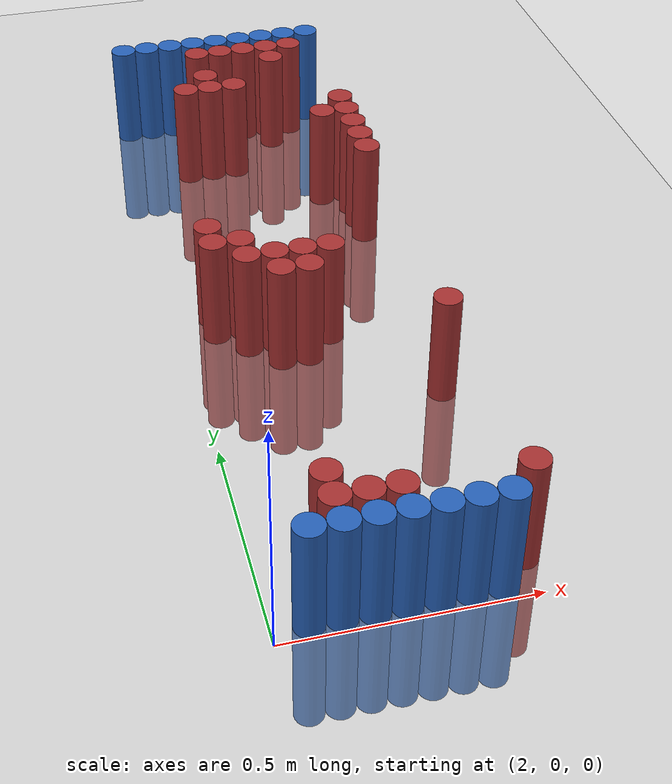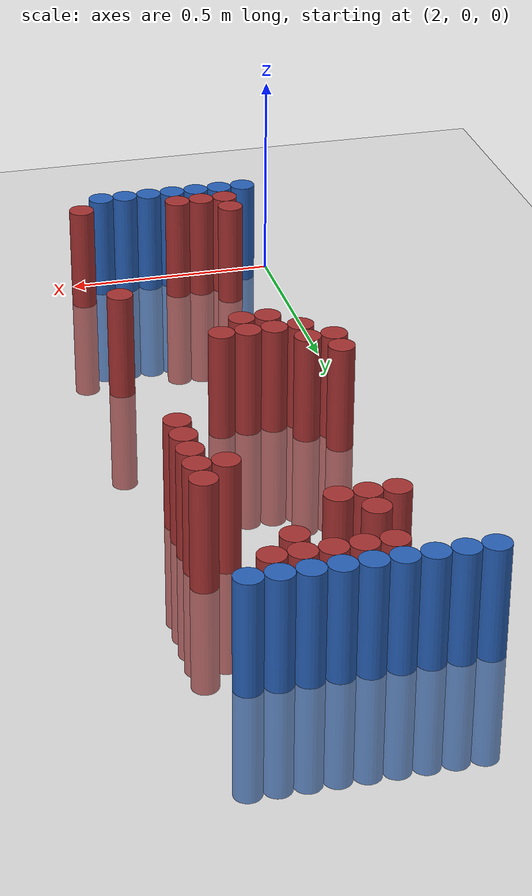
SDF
<sdf version="1.6">
 <world name="default">
  <model name="ground_plane">
   <static>1</static>
   <link name="link">
    <collision name="collision">
     <geometry><plane><normal>0 0 1</normal><size>100 100</size></plane></geometry>
     <surface><friction><ode><mu>100</mu><mu2>50</mu2></ode></friction></surface>
    </collision>
    <visual name="visual">
     <cast_shadows>0</cast_shadows>
     <geometry><plane><normal>0 0 1</normal><size>100 100</size></plane></geometry>
     <material>
      <script><uri>file://media/materials/scripts/gazebo.material</uri><name>Gazebo/Grey</name></script>
     </material>
    </visual>
   </link>
  </model>
  <model name="unit_cylinder_94">
   <static>1</static>
   <pose>2.010000 1.770000 0.000000 0.000000 0.000000 0.000000</pose>
   <link name="link">
    <inertial>
     <mass>1</mass>
     <inertia><ixx>0.145833</ixx><ixy>0</ixy><ixz>0</ixz><iyy>0.145833</iyy><iyz>0</iyz><izz>0.125</izz></inertia>
    </inertial>
    <collision name="collision">
     <geometry><cylinder><radius>0.030000</radius><length>0.5</length></cylinder></geometry>
    </collision>
    <visual name="visual">
     <geometry><cylinder><radius>0.030000</radius><length>0.5</length></cylinder></geometry>
     <material>
      <ambient>0.152000 0.379000 0.720000 1</ambient>
      <diffuse>0.152000 0.379000 0.720000 1</diffuse>
     </material>
     <material>
      <script><name>Gazebo/Grey</name><uri>file://media/materials/scripts/gazebo.material</uri></script>
     </material>
    </visual>
   </link>
  </model>
  <model name="unit_cylinder_95">
   <static>1</static>
   <pose>2.070000 1.770000 0.000000 0.000000 0.000000 0.000000</pose>
   <link name="link">
    <inertial>
     <mass>1</mass>
     <inertia><ixx>0.145833</ixx><ixy>0</ixy><ixz>0</ixz><iyy>0.145833</iyy><iyz>0</iyz><izz>0.125</izz></inertia>
    </inertial>
    <collision name="collision">
     <geometry><cylinder><radius>0.030000</radius><length>0.5</length></cylinder></geometry>
    </collision>
    <visual name="visual">
     <geometry><cylinder><radius>0.030000</radius><length>0.5</length></cylinder></geometry>
     <material>
      <ambient>0.152000 0.379000 0.720000 1</ambient>
      <diffuse>0.152000 0.379000 0.720000 1</diffuse>
     </material>
     <material>
      <script><name>Gazebo/Grey</name><uri>file://media/materials/scripts/gazebo.material</uri></script>
     </material>
    </visual>
   </link>
  </model>
  <model name="unit_cylinder_96">
   <static>1</static>
   <pose>2.130000 1.770000 0.000000 0.000000 0.000000 0.000000</pose>
   <link name="link">
    <inertial>
     <mass>1</mass>
     <inertia><ixx>0.145833</ixx><ixy>0</ixy><ixz>0</ixz><iyy>0.145833</iyy><iyz>0</iyz><izz>0.125</izz></inertia>
    </inertial>
    <collision name="collision">
     <geometry><cylinder><radius>0.030000</radius><length>0.5</length></cylinder></geometry>
    </collision>
    <visual name="visual">
     <geometry><cylinder><radius>0.030000</radius><length>0.5</length></cylinder></geometry>
     <material>
      <ambient>0.152000 0.379000 0.720000 1</ambient>
      <diffuse>0.152000 0.379000 0.720000 1</diffuse>
     </material>
     <material>
      <script><name>Gazebo/Grey</name><uri>file://media/materials/scripts/gazebo.material</uri></script>
     </material>
    </visual>
   </link>
  </model>
  <model name="unit_cylinder_97">
   <static>1</static>
   <pose>2.190000 1.770000 0.000000 0.000000 0.000000 0.000000</pose>
   <link name="link">
    <inertial>
     <mass>1</mass>
     <inertia><ixx>0.145833</ixx><ixy>0</ixy><ixz>0</ixz><iyy>0.145833</iyy><iyz>0</iyz><izz>0.125</izz></inertia>
    </inertial>
    <collision name="collision">
     <geometry><cylinder><radius>0.030000</radius><length>0.5</length></cylinder></geometry>
    </collision>
    <visual name="visual">
     <geometry><cylinder><radius>0.030000</radius><length>0.5</length></cylinder></geometry>
     <material>
      <ambient>0.152000 0.379000 0.720000 1</ambient>
      <diffuse>0.152000 0.379000 0.720000 1</diffuse>
     </material>
     <material>
      <script><name>Gazebo/Grey</name><uri>file://media/materials/scripts/gazebo.material</uri></script>
     </material>
    </visual>
   </link>
  </model>
  <model name="unit_cylinder_98">
   <static>1</static>
   <pose>2.250000 1.770000 0.000000 0.000000 0.000000 0.000000</pose>
   <link name="link">
    <inertial>
     <mass>1</mass>
     <inertia><ixx>0.145833</ixx><ixy>0</ixy><ixz>0</ixz><iyy>0.145833</iyy><iyz>0</iyz><izz>0.125</izz></inertia>
    </inertial>
    <collision name="collision">
     <geometry><cylinder><radius>0.030000</radius><length>0.5</length></cylinder></geometry>
    </collision>
    <visual name="visual">
     <geometry><cylinder><radius>0.030000</radius><length>0.5</length></cylinder></geometry>
     <material>
      <ambient>0.152000 0.379000 0.720000 1</ambient>
      <diffuse>0.152000 0.379000 0.720000 1</diffuse>
     </material>
     <material>
      <script><name>Gazebo/Grey</name><uri>file://media/materials/scripts/gazebo.material</uri></script>
     </material>
    </visual>
   </link>
  </model>
  <model name="unit_cylinder_99">
   <static>1</static>
   <pose>2.310000 1.770000 0.000000 0.000000 0.000000 0.000000</pose>
   <link name="link">
    <inertial>
     <mass>1</mass>
     <inertia><ixx>0.145833</ixx><ixy>0</ixy><ixz>0</ixz><iyy>0.145833</iyy><iyz>0</iyz><izz>0.125</izz></inertia>
    </inertial>
    <collision name="collision">
     <geometry><cylinder><radius>0.030000</radius><length>0.5</length></cylinder></geometry>
    </collision>
    <visual name="visual">
     <geometry><cylinder><radius>0.030000</radius><length>0.5</length></cylinder></geometry>
     <material>
      <ambient>0.152000 0.379000 0.720000 1</ambient>
      <diffuse>0.152000 0.379000 0.720000 1</diffuse>
     </material>
     <material>
      <script><name>Gazebo/Grey</name><uri>file://media/materials/scripts/gazebo.material</uri></script>
     </material>
    </visual>
   </link>
  </model>
  <model name="unit_cylinder_100">
   <static>1</static>
   <pose>2.370000 1.770000 0.000000 0.000000 0.000000 0.000000</pose>
   <link name="link">
    <inertial>
     <mass>1</mass>
     <inertia><ixx>0.145833</ixx><ixy>0</ixy><ixz>0</ixz><iyy>0.145833</iyy><iyz>0</iyz><izz>0.125</izz></inertia>
    </inertial>
    <collision name="collision">
     <geometry><cylinder><radius>0.030000</radius><length>0.5</length></cylinder></geometry>
    </collision>
    <visual name="visual">
     <geometry><cylinder><radius>0.030000</radius><length>0.5</length></cylinder></geometry>
     <material>
      <ambient>0.152000 0.379000 0.720000 1</ambient>
      <diffuse>0.152000 0.379000 0.720000 1</diffuse>
     </material>
     <material>
      <script><name>Gazebo/Grey</name><uri>file://media/materials/scripts/gazebo.material</uri></script>
     </material>
    </visual>
   </link>
  </model>
  <model name="unit_cylinder_101">
   <static>1</static>
   <pose>2.430000 1.770000 0.000000 0.000000 0.000000 0.000000</pose>
   <link name="link">
    <inertial>
     <mass>1</mass>
     <inertia><ixx>0.145833</ixx><ixy>0</ixy><ixz>0</ixz><iyy>0.145833</iyy><iyz>0</iyz><izz>0.125</izz></inertia>
    </inertial>
    <collision name="collision">
     <geometry><cylinder><radius>0.030000</radius><length>0.5</length></cylinder></geometry>
    </collision>
    <visual name="visual">
     <geometry><cylinder><radius>0.030000</radius><length>0.5</length></cylinder></geometry>
     <material>
      <ambient>0.152000 0.379000 0.720000 1</ambient>
      <diffuse>0.152000 0.379000 0.720000 1</diffuse>
     </material>
     <material>
      <script><name>Gazebo/Grey</name><uri>file://media/materials/scripts/gazebo.material</uri></script>
     </material>
    </visual>
   </link>
  </model>
  <model name="unit_cylinder_102">
   <static>1</static>
   <pose>2.490000 1.770000 0.000000 0.000000 0.000000 0.000000</pose>
   <link name="link">
    <inertial>
     <mass>1</mass>
     <inertia><ixx>0.145833</ixx><ixy>0</ixy><ixz>0</ixz><iyy>0.145833</iyy><iyz>0</iyz><izz>0.125</izz></inertia>
    </inertial>
    <collision name="collision">
     <geometry><cylinder><radius>0.030000</radius><length>0.5</length></cylinder></geometry>
    </collision>
    <visual name="visual">
     <geometry><cylinder><radius>0.030000</radius><length>0.5</length></cylinder></geometry>
     <material>
      <ambient>0.152000 0.379000 0.720000 1</ambient>
      <diffuse>0.152000 0.379000 0.720000 1</diffuse>
     </material>
     <material>
      <script><name>Gazebo/Grey</name><uri>file://media/materials/scripts/gazebo.material</uri></script>
     </material>
    </visual>
   </link>
  </model>
  <model name="unit_cylinder_125">
   <static>1</static>
   <pose>2.190000 1.710000 0.000000 0.000000 0.000000 0.000000</pose>
   <link name="link">
    <inertial>
     <mass>1</mass>
     <inertia><ixx>0.145833</ixx><ixy>0</ixy><ixz>0</ixz><iyy>0.145833</iyy><iyz>0</iyz><izz>0.125</izz></inertia>
    </inertial>
    <collision name="collision">
     <geometry><cylinder><radius>0.030000</radius><length>0.5</length></cylinder></geometry>
    </collision>
    <visual name="visual">
     <geometry><cylinder><radius>0.030000</radius><length>0.5</length></cylinder></geometry>
     <material>
      <ambient>0.648000 0.192000 0.192000 1</ambient>
      <diffuse>0.648000 0.192000 0.192000 1</diffuse>
     </material>
     <material>
      <script><name>Gazebo/Grey</name><uri>file://media/materials/scripts/gazebo.material</uri></script>
     </material>
    </visual>
   </link>
  </model>
  <model name="unit_cylinder_126">
   <static>1</static>
   <pose>2.250000 1.710000 0.000000 0.000000 0.000000 0.000000</pose>
   <link name="link">
    <inertial>
     <mass>1</mass>
     <inertia><ixx>0.145833</ixx><ixy>0</ixy><ixz>0</ixz><iyy>0.145833</iyy><iyz>0</iyz><izz>0.125</izz></inertia>
    </inertial>
    <collision name="collision">
     <geometry><cylinder><radius>0.030000</radius><length>0.5</length></cylinder></geometry>
    </collision>
    <visual name="visual">
     <geometry><cylinder><radius>0.030000</radius><length>0.5</length></cylinder></geometry>
     <material>
      <ambient>0.648000 0.192000 0.192000 1</ambient>
      <diffuse>0.648000 0.192000 0.192000 1</diffuse>
     </material>
     <material>
      <script><name>Gazebo/Grey</name><uri>file://media/materials/scripts/gazebo.material</uri></script>
     </material>
    </visual>
   </link>
  </model>
  <model name="unit_cylinder_127">
   <static>1</static>
   <pose>2.310000 1.710000 0.000000 0.000000 0.000000 0.000000</pose>
   <link name="link">
    <inertial>
     <mass>1</mass>
     <inertia><ixx>0.145833</ixx><ixy>0</ixy><ixz>0</ixz><iyy>0.145833</iyy><iyz>0</iyz><izz>0.125</izz></inertia>
    </inertial>
    <collision name="collision">
     <geometry><cylinder><radius>0.030000</radius><length>0.5</length></cylinder></geometry>
    </collision>
    <visual name="visual">
     <geometry><cylinder><radius>0.030000</radius><length>0.5</length></cylinder></geometry>
     <material>
      <ambient>0.648000 0.192000 0.192000 1</ambient>
      <diffuse>0.648000 0.192000 0.192000 1</diffuse>
     </material>
     <material>
      <script><name>Gazebo/Grey</name><uri>file://media/materials/scripts/gazebo.material</uri></script>
     </material>
    </visual>
   </link>
  </model>
  <model name="unit_cylinder_128">
   <static>1</static>
   <pose>2.370000 1.710000 0.000000 0.000000 0.000000 0.000000</pose>
   <link name="link">
    <inertial>
     <mass>1</mass>
     <inertia><ixx>0.145833</ixx><ixy>0</ixy><ixz>0</ixz><iyy>0.145833</iyy><iyz>0</iyz><izz>0.125</izz></inertia>
    </inertial>
    <collision name="collision">
     <geometry><cylinder><radius>0.030000</radius><length>0.5</length></cylinder></geometry>
    </collision>
    <visual name="visual">
     <geometry><cylinder><radius>0.030000</radius><length>0.5</length></cylinder></geometry>
     <material>
      <ambient>0.648000 0.192000 0.192000 1</ambient>
      <diffuse>0.648000 0.192000 0.192000 1</diffuse>
     </material>
     <material>
      <script><name>Gazebo/Grey</name><uri>file://media/materials/scripts/gazebo.material</uri></script>
     </material>
    </visual>
   </link>
  </model>
  <model name="unit_cylinder_129">
   <static>1</static>
   <pose>2.430000 1.710000 0.000000 0.000000 0.000000 0.000000</pose>
   <link name="link">
    <inertial>
     <mass>1</mass>
     <inertia><ixx>0.145833</ixx><ixy>0</ixy><ixz>0</ixz><iyy>0.145833</iyy><iyz>0</iyz><izz>0.125</izz></inertia>
    </inertial>
    <collision name="collision">
     <geometry><cylinder><radius>0.030000</radius><length>0.5</length></cylinder></geometry>
    </collision>
    <visual name="visual">
     <geometry><cylinder><radius>0.030000</radius><length>0.5</length></cylinder></geometry>
     <material>
      <ambient>0.648000 0.192000 0.192000 1</ambient>
      <diffuse>0.648000 0.192000 0.192000 1</diffuse>
     </material>
     <material>
      <script><name>Gazebo/Grey</name><uri>file://media/materials/scripts/gazebo.material</uri></script>
     </material>
    </visual>
   </link>
  </model>
  <model name="unit_cylinder_138">
   <static>1</static>
   <pose>2.370000 1.650000 0.000000 0.000000 0.000000 0.000000</pose>
   <link name="link">
    <inertial>
     <mass>1</mass>
     <inertia><ixx>0.145833</ixx><ixy>0</ixy><ixz>0</ixz><iyy>0.145833</iyy><iyz>0</iyz><izz>0.125</izz></inertia>
    </inertial>
    <collision name="collision">
     <geometry><cylinder><radius>0.030000</radius><length>0.5</length></cylinder></geometry>
    </collision>
    <visual name="visual">
     <geometry><cylinder><radius>0.030000</radius><length>0.5</length></cylinder></geometry>
     <material>
      <ambient>0.648000 0.192000 0.192000 1</ambient>
      <diffuse>0.648000 0.192000 0.192000 1</diffuse>
     </material>
     <material>
      <script><name>Gazebo/Grey</name><uri>file://media/materials/scripts/gazebo.material</uri></script>
     </material>
    </visual>
   </link>
  </model>
  <model name="unit_cylinder_140">
   <static>1</static>
   <pose>2.190000 1.590000 0.000000 0.000000 0.000000 0.000000</pose>
   <link name="link">
    <inertial>
     <mass>1</mass>
     <inertia><ixx>0.145833</ixx><ixy>0</ixy><ixz>0</ixz><iyy>0.145833</iyy><iyz>0</iyz><izz>0.125</izz></inertia>
    </inertial>
    <collision name="collision">
     <geometry><cylinder><radius>0.030000</radius><length>0.5</length></cylinder></geometry>
    </collision>
    <visual name="visual">
     <geometry><cylinder><radius>0.030000</radius><length>0.5</length></cylinder></geometry>
     <material>
      <ambient>0.648000 0.192000 0.192000 1</ambient>
      <diffuse>0.648000 0.192000 0.192000 1</diffuse>
     </material>
     <material>
      <script><name>Gazebo/Grey</name><uri>file://media/materials/scripts/gazebo.material</uri></script>
     </material>
    </visual>
   </link>
  </model>
  <model name="unit_cylinder_143">
   <static>1</static>
   <pose>2.130000 1.530000 0.000000 0.000000 0.000000 0.000000</pose>
   <link name="link">
    <inertial>
     <mass>1</mass>
     <inertia><ixx>0.145833</ixx><ixy>0</ixy><ixz>0</ixz><iyy>0.145833</iyy><iyz>0</iyz><izz>0.125</izz></inertia>
    </inertial>
    <collision name="collision">
     <geometry><cylinder><radius>0.030000</radius><length>0.5</length></cylinder></geometry>
    </collision>
    <visual name="visual">
     <geometry><cylinder><radius>0.030000</radius><length>0.5</length></cylinder></geometry>
     <material>
      <ambient>0.648000 0.192000 0.192000 1</ambient>
      <diffuse>0.648000 0.192000 0.192000 1</diffuse>
     </material>
     <material>
      <script><name>Gazebo/Grey</name><uri>file://media/materials/scripts/gazebo.material</uri></script>
     </material>
    </visual>
   </link>
  </model>
  <model name="unit_cylinder_144">
   <static>1</static>
   <pose>2.190000 1.530000 0.000000 0.000000 0.000000 0.000000</pose>
   <link name="link">
    <inertial>
     <mass>1</mass>
     <inertia><ixx>0.145833</ixx><ixy>0</ixy><ixz>0</ixz><iyy>0.145833</iyy><iyz>0</iyz><izz>0.125</izz></inertia>
    </inertial>
    <collision name="collision">
     <geometry><cylinder><radius>0.030000</radius><length>0.5</length></cylinder></geometry>
    </collision>
    <visual name="visual">
     <geometry><cylinder><radius>0.030000</radius><length>0.5</length></cylinder></geometry>
     <material>
      <ambient>0.648000 0.192000 0.192000 1</ambient>
      <diffuse>0.648000 0.192000 0.192000 1</diffuse>
     </material>
     <material>
      <script><name>Gazebo/Grey</name><uri>file://media/materials/scripts/gazebo.material</uri></script>
     </material>
    </visual>
   </link>
  </model>
  <model name="unit_cylinder_145">
   <static>1</static>
   <pose>2.250000 1.530000 0.000000 0.000000 0.000000 0.000000</pose>
   <link name="link">
    <inertial>
     <mass>1</mass>
     <inertia><ixx>0.145833</ixx><ixy>0</ixy><ixz>0</ixz><iyy>0.145833</iyy><iyz>0</iyz><izz>0.125</izz></inertia>
    </inertial>
    <collision name="collision">
     <geometry><cylinder><radius>0.030000</radius><length>0.5</length></cylinder></geometry>
    </collision>
    <visual name="visual">
     <geometry><cylinder><radius>0.030000</radius><length>0.5</length></cylinder></geometry>
     <material>
      <ambient>0.648000 0.192000 0.192000 1</ambient>
      <diffuse>0.648000 0.192000 0.192000 1</diffuse>
     </material>
     <material>
      <script><name>Gazebo/Grey</name><uri>file://media/materials/scripts/gazebo.material</uri></script>
     </material>
    </visual>
   </link>
  </model>
  <model name="unit_cylinder_148">
   <static>1</static>
   <pose>2.490000 1.410000 0.000000 0.000000 0.000000 0.000000</pose>
   <link name="link">
    <inertial>
     <mass>1</mass>
     <inertia><ixx>0.145833</ixx><ixy>0</ixy><ixz>0</ixz><iyy>0.145833</iyy><iyz>0</iyz><izz>0.125</izz></inertia>
    </inertial>
    <collision name="collision">
     <geometry><cylinder><radius>0.030000</radius><length>0.5</length></cylinder></geometry>
    </collision>
    <visual name="visual">
     <geometry><cylinder><radius>0.030000</radius><length>0.5</length></cylinder></geometry>
     <material>
      <ambient>0.648000 0.192000 0.192000 1</ambient>
      <diffuse>0.648000 0.192000 0.192000 1</diffuse>
     </material>
     <material>
      <script><name>Gazebo/Grey</name><uri>file://media/materials/scripts/gazebo.material</uri></script>
     </material>
    </visual>
   </link>
  </model>
  <model name="unit_cylinder_149">
   <static>1</static>
   <pose>2.430000 1.350000 0.000000 0.000000 0.000000 0.000000</pose>
   <link name="link">
    <inertial>
     <mass>1</mass>
     <inertia><ixx>0.145833</ixx><ixy>0</ixy><ixz>0</ixz><iyy>0.145833</iyy><iyz>0</iyz><izz>0.125</izz></inertia>
    </inertial>
    <collision name="collision">
     <geometry><cylinder><radius>0.030000</radius><length>0.5</length></cylinder></geometry>
    </collision>
    <visual name="visual">
     <geometry><cylinder><radius>0.030000</radius><length>0.5</length></cylinder></geometry>
     <material>
      <ambient>0.648000 0.192000 0.192000 1</ambient>
      <diffuse>0.648000 0.192000 0.192000 1</diffuse>
     </material>
     <material>
      <script><name>Gazebo/Grey</name><uri>file://media/materials/scripts/gazebo.material</uri></script>
     </material>
    </visual>
   </link>
  </model>
  <model name="unit_cylinder_150">
   <static>1</static>
   <pose>2.490000 1.350000 0.000000 0.000000 0.000000 0.000000</pose>
   <link name="link">
    <inertial>
     <mass>1</mass>
     <inertia><ixx>0.145833</ixx><ixy>0</ixy><ixz>0</ixz><iyy>0.145833</iyy><iyz>0</iyz><izz>0.125</izz></inertia>
    </inertial>
    <collision name="collision">
     <geometry><cylinder><radius>0.030000</radius><length>0.5</length></cylinder></geometry>
    </collision>
    <visual name="visual">
     <geometry><cylinder><radius>0.030000</radius><length>0.5</length></cylinder></geometry>
     <material>
      <ambient>0.648000 0.192000 0.192000 1</ambient>
      <diffuse>0.648000 0.192000 0.192000 1</diffuse>
     </material>
     <material>
      <script><name>Gazebo/Grey</name><uri>file://media/materials/scripts/gazebo.material</uri></script>
     </material>
    </visual>
   </link>
  </model>
  <model name="unit_cylinder_152">
   <static>1</static>
   <pose>2.490000 1.290000 0.000000 0.000000 0.000000 0.000000</pose>
   <link name="link">
    <inertial>
     <mass>1</mass>
     <inertia><ixx>0.145833</ixx><ixy>0</ixy><ixz>0</ixz><iyy>0.145833</iyy><iyz>0</iyz><izz>0.125</izz></inertia>
    </inertial>
    <collision name="collision">
     <geometry><cylinder><radius>0.030000</radius><length>0.5</length></cylinder></geometry>
    </collision>
    <visual name="visual">
     <geometry><cylinder><radius>0.030000</radius><length>0.5</length></cylinder></geometry>
     <material>
      <ambient>0.648000 0.192000 0.192000 1</ambient>
      <diffuse>0.648000 0.192000 0.192000 1</diffuse>
     </material>
     <material>
      <script><name>Gazebo/Grey</name><uri>file://media/materials/scripts/gazebo.material</uri></script>
     </material>
    </visual>
   </link>
  </model>
  <model name="unit_cylinder_154">
   <static>1</static>
   <pose>2.490000 1.230000 0.000000 0.000000 0.000000 0.000000</pose>
   <link name="link">
    <inertial>
     <mass>1</mass>
     <inertia><ixx>0.145833</ixx><ixy>0</ixy><ixz>0</ixz><iyy>0.145833</iyy><iyz>0</iyz><izz>0.125</izz></inertia>
    </inertial>
    <collision name="collision">
     <geometry><cylinder><radius>0.030000</radius><length>0.5</length></cylinder></geometry>
    </collision>
    <visual name="visual">
     <geometry><cylinder><radius>0.030000</radius><length>0.5</length></cylinder></geometry>
     <material>
      <ambient>0.648000 0.192000 0.192000 1</ambient>
      <diffuse>0.648000 0.192000 0.192000 1</diffuse>
     </material>
     <material>
      <script><name>Gazebo/Grey</name><uri>file://media/materials/scripts/gazebo.material</uri></script>
     </material>
    </visual>
   </link>
  </model>
  <model name="unit_cylinder_158">
   <static>1</static>
   <pose>2.490000 1.170000 0.000000 0.000000 0.000000 0.000000</pose>
   <link name="link">
    <inertial>
     <mass>1</mass>
     <inertia><ixx>0.145833</ixx><ixy>0</ixy><ixz>0</ixz><iyy>0.145833</iyy><iyz>0</iyz><izz>0.125</izz></inertia>
    </inertial>
    <collision name="collision">
     <geometry><cylinder><radius>0.030000</radius><length>0.5</length></cylinder></geometry>
    </collision>
    <visual name="visual">
     <geometry><cylinder><radius>0.030000</radius><length>0.5</length></cylinder></geometry>
     <material>
      <ambient>0.648000 0.192000 0.192000 1</ambient>
      <diffuse>0.648000 0.192000 0.192000 1</diffuse>
     </material>
     <material>
      <script><name>Gazebo/Grey</name><uri>file://media/materials/scripts/gazebo.material</uri></script>
     </material>
    </visual>
   </link>
  </model>
  <model name="unit_cylinder_163">
   <static>1</static>
   <pose>2.070000 0.930000 0.000000 0.000000 0.000000 0.000000</pose>
   <link name="link">
    <inertial>
     <mass>1</mass>
     <inertia><ixx>0.145833</ixx><ixy>0</ixy><ixz>0</ixz><iyy>0.145833</iyy><iyz>0</iyz><izz>0.125</izz></inertia>
    </inertial>
    <collision name="collision">
     <geometry><cylinder><radius>0.030000</radius><length>0.5</length></cylinder></geometry>
    </collision>
    <visual name="visual">
     <geometry><cylinder><radius>0.030000</radius><length>0.5</length></cylinder></geometry>
     <material>
      <ambient>0.648000 0.192000 0.192000 1</ambient>
      <diffuse>0.648000 0.192000 0.192000 1</diffuse>
     </material>
     <material>
      <script><name>Gazebo/Grey</name><uri>file://media/materials/scripts/gazebo.material</uri></script>
     </material>
    </visual>
   </link>
  </model>
  <model name="unit_cylinder_164">
   <static>1</static>
   <pose>2.070000 0.870000 0.000000 0.000000 0.000000 0.000000</pose>
   <link name="link">
    <inertial>
     <mass>1</mass>
     <inertia><ixx>0.145833</ixx><ixy>0</ixy><ixz>0</ixz><iyy>0.145833</iyy><iyz>0</iyz><izz>0.125</izz></inertia>
    </inertial>
    <collision name="collision">
     <geometry><cylinder><radius>0.030000</radius><length>0.5</length></cylinder></geometry>
    </collision>
    <visual name="visual">
     <geometry><cylinder><radius>0.030000</radius><length>0.5</length></cylinder></geometry>
     <material>
      <ambient>0.648000 0.192000 0.192000 1</ambient>
      <diffuse>0.648000 0.192000 0.192000 1</diffuse>
     </material>
     <material>
      <script><name>Gazebo/Grey</name><uri>file://media/materials/scripts/gazebo.material</uri></script>
     </material>
    </visual>
   </link>
  </model>
  <model name="unit_cylinder_165">
   <static>1</static>
   <pose>2.130000 0.870000 0.000000 0.000000 0.000000 0.000000</pose>
   <link name="link">
    <inertial>
     <mass>1</mass>
     <inertia><ixx>0.145833</ixx><ixy>0</ixy><ixz>0</ixz><iyy>0.145833</iyy><iyz>0</iyz><izz>0.125</izz></inertia>
    </inertial>
    <collision name="collision">
     <geometry><cylinder><radius>0.030000</radius><length>0.5</length></cylinder></geometry>
    </collision>
    <visual name="visual">
     <geometry><cylinder><radius>0.030000</radius><length>0.5</length></cylinder></geometry>
     <material>
      <ambient>0.648000 0.192000 0.192000 1</ambient>
      <diffuse>0.648000 0.192000 0.192000 1</diffuse>
     </material>
     <material>
      <script><name>Gazebo/Grey</name><uri>file://media/materials/scripts/gazebo.material</uri></script>
     </material>
    </visual>
   </link>
  </model>
  <model name="unit_cylinder_168">
   <static>1</static>
   <pose>2.130000 0.810000 0.000000 0.000000 0.000000 0.000000</pose>
   <link name="link">
    <inertial>
     <mass>1</mass>
     <inertia><ixx>0.145833</ixx><ixy>0</ixy><ixz>0</ixz><iyy>0.145833</iyy><iyz>0</iyz><izz>0.125</izz></inertia>
    </inertial>
    <collision name="collision">
     <geometry><cylinder><radius>0.030000</radius><length>0.5</length></cylinder></geometry>
    </collision>
    <visual name="visual">
     <geometry><cylinder><radius>0.030000</radius><length>0.5</length></cylinder></geometry>
     <material>
      <ambient>0.648000 0.192000 0.192000 1</ambient>
      <diffuse>0.648000 0.192000 0.192000 1</diffuse>
     </material>
     <material>
      <script><name>Gazebo/Grey</name><uri>file://media/materials/scripts/gazebo.material</uri></script>
     </material>
    </visual>
   </link>
  </model>
  <model name="unit_cylinder_169">
   <static>1</static>
   <pose>2.190000 0.810000 0.000000 0.000000 0.000000 0.000000</pose>
   <link name="link">
    <inertial>
     <mass>1</mass>
     <inertia><ixx>0.145833</ixx><ixy>0</ixy><ixz>0</ixz><iyy>0.145833</iyy><iyz>0</iyz><izz>0.125</izz></inertia>
    </inertial>
    <collision name="collision">
     <geometry><cylinder><radius>0.030000</radius><length>0.5</length></cylinder></geometry>
    </collision>
    <visual name="visual">
     <geometry><cylinder><radius>0.030000</radius><length>0.5</length></cylinder></geometry>
     <material>
      <ambient>0.648000 0.192000 0.192000 1</ambient>
      <diffuse>0.648000 0.192000 0.192000 1</diffuse>
     </material>
     <material>
      <script><name>Gazebo/Grey</name><uri>file://media/materials/scripts/gazebo.material</uri></script>
     </material>
    </visual>
   </link>
  </model>
  <model name="unit_cylinder_170">
   <static>1</static>
   <pose>2.250000 0.810000 0.000000 0.000000 0.000000 0.000000</pose>
   <link name="link">
    <inertial>
     <mass>1</mass>
     <inertia><ixx>0.145833</ixx><ixy>0</ixy><ixz>0</ixz><iyy>0.145833</iyy><iyz>0</iyz><izz>0.125</izz></inertia>
    </inertial>
    <collision name="collision">
     <geometry><cylinder><radius>0.030000</radius><length>0.5</length></cylinder></geometry>
    </collision>
    <visual name="visual">
     <geometry><cylinder><radius>0.030000</radius><length>0.5</length></cylinder></geometry>
     <material>
      <ambient>0.648000 0.192000 0.192000 1</ambient>
      <diffuse>0.648000 0.192000 0.192000 1</diffuse>
     </material>
     <material>
      <script><name>Gazebo/Grey</name><uri>file://media/materials/scripts/gazebo.material</uri></script>
     </material>
    </visual>
   </link>
  </model>
  <model name="unit_cylinder_171">
   <static>1</static>
   <pose>2.310000 0.810000 0.000000 0.000000 0.000000 0.000000</pose>
   <link name="link">
    <inertial>
     <mass>1</mass>
     <inertia><ixx>0.145833</ixx><ixy>0</ixy><ixz>0</ixz><iyy>0.145833</iyy><iyz>0</iyz><izz>0.125</izz></inertia>
    </inertial>
    <collision name="collision">
     <geometry><cylinder><radius>0.030000</radius><length>0.5</length></cylinder></geometry>
    </collision>
    <visual name="visual">
     <geometry><cylinder><radius>0.030000</radius><length>0.5</length></cylinder></geometry>
     <material>
      <ambient>0.648000 0.192000 0.192000 1</ambient>
      <diffuse>0.648000 0.192000 0.192000 1</diffuse>
     </material>
     <material>
      <script><name>Gazebo/Grey</name><uri>file://media/materials/scripts/gazebo.material</uri></script>
     </material>
    </visual>
   </link>
  </model>
  <model name="unit_cylinder_174">
   <static>1</static>
   <pose>2.190000 0.750000 0.000000 0.000000 0.000000 0.000000</pose>
   <link name="link">
    <inertial>
     <mass>1</mass>
     <inertia><ixx>0.145833</ixx><ixy>0</ixy><ixz>0</ixz><iyy>0.145833</iyy><iyz>0</iyz><izz>0.125</izz></inertia>
    </inertial>
    <collision name="collision">
     <geometry><cylinder><radius>0.030000</radius><length>0.5</length></cylinder></geometry>
    </collision>
    <visual name="visual">
     <geometry><cylinder><radius>0.030000</radius><length>0.5</length></cylinder></geometry>
     <material>
      <ambient>0.648000 0.192000 0.192000 1</ambient>
      <diffuse>0.648000 0.192000 0.192000 1</diffuse>
     </material>
     <material>
      <script><name>Gazebo/Grey</name><uri>file://media/materials/scripts/gazebo.material</uri></script>
     </material>
    </visual>
   </link>
  </model>
  <model name="unit_cylinder_175">
   <static>1</static>
   <pose>2.250000 0.750000 0.000000 0.000000 0.000000 0.000000</pose>
   <link name="link">
    <inertial>
     <mass>1</mass>
     <inertia><ixx>0.145833</ixx><ixy>0</ixy><ixz>0</ixz><iyy>0.145833</iyy><iyz>0</iyz><izz>0.125</izz></inertia>
    </inertial>
    <collision name="collision">
     <geometry><cylinder><radius>0.030000</radius><length>0.5</length></cylinder></geometry>
    </collision>
    <visual name="visual">
     <geometry><cylinder><radius>0.030000</radius><length>0.5</length></cylinder></geometry>
     <material>
      <ambient>0.648000 0.192000 0.192000 1</ambient>
      <diffuse>0.648000 0.192000 0.192000 1</diffuse>
     </material>
     <material>
      <script><name>Gazebo/Grey</name><uri>file://media/materials/scripts/gazebo.material</uri></script>
     </material>
    </visual>
   </link>
  </model>
  <model name="unit_cylinder_180">
   <static>1</static>
   <pose>2.490000 0.570000 0.000000 0.000000 0.000000 0.000000</pose>
   <link name="link">
    <inertial>
     <mass>1</mass>
     <inertia><ixx>0.145833</ixx><ixy>0</ixy><ixz>0</ixz><iyy>0.145833</iyy><iyz>0</iyz><izz>0.125</izz></inertia>
    </inertial>
    <collision name="collision">
     <geometry><cylinder><radius>0.030000</radius><length>0.5</length></cylinder></geometry>
    </collision>
    <visual name="visual">
     <geometry><cylinder><radius>0.030000</radius><length>0.5</length></cylinder></geometry>
     <material>
      <ambient>0.648000 0.192000 0.192000 1</ambient>
      <diffuse>0.648000 0.192000 0.192000 1</diffuse>
     </material>
     <material>
      <script><name>Gazebo/Grey</name><uri>file://media/materials/scripts/gazebo.material</uri></script>
     </material>
    </visual>
   </link>
  </model>
  <model name="unit_cylinder_189">
   <static>1</static>
   <pose>2.130000 0.150000 0.000000 0.000000 0.000000 0.000000</pose>
   <link name="link">
    <inertial>
     <mass>1</mass>
     <inertia><ixx>0.145833</ixx><ixy>0</ixy><ixz>0</ixz><iyy>0.145833</iyy><iyz>0</iyz><izz>0.125</izz></inertia>
    </inertial>
    <collision name="collision">
     <geometry><cylinder><radius>0.030000</radius><length>0.5</length></cylinder></geometry>
    </collision>
    <visual name="visual">
     <geometry><cylinder><radius>0.030000</radius><length>0.5</length></cylinder></geometry>
     <material>
      <ambient>0.648000 0.192000 0.192000 1</ambient>
      <diffuse>0.648000 0.192000 0.192000 1</diffuse>
     </material>
     <material>
      <script><name>Gazebo/Grey</name><uri>file://media/materials/scripts/gazebo.material</uri></script>
     </material>
    </visual>
   </link>
  </model>
  <model name="unit_cylinder_192">
   <static>1</static>
   <pose>2.130000 0.090000 0.000000 0.000000 0.000000 0.000000</pose>
   <link name="link">
    <inertial>
     <mass>1</mass>
     <inertia><ixx>0.145833</ixx><ixy>0</ixy><ixz>0</ixz><iyy>0.145833</iyy><iyz>0</iyz><izz>0.125</izz></inertia>
    </inertial>
    <collision name="collision">
     <geometry><cylinder><radius>0.030000</radius><length>0.5</length></cylinder></geometry>
    </collision>
    <visual name="visual">
     <geometry><cylinder><radius>0.030000</radius><length>0.5</length></cylinder></geometry>
     <material>
      <ambient>0.648000 0.192000 0.192000 1</ambient>
      <diffuse>0.648000 0.192000 0.192000 1</diffuse>
     </material>
     <material>
      <script><name>Gazebo/Grey</name><uri>file://media/materials/scripts/gazebo.material</uri></script>
     </material>
    </visual>
   </link>
  </model>
  <model name="unit_cylinder_193">
   <static>1</static>
   <pose>2.190000 0.090000 0.000000 0.000000 0.000000 0.000000</pose>
   <link name="link">
    <inertial>
     <mass>1</mass>
     <inertia><ixx>0.145833</ixx><ixy>0</ixy><ixz>0</ixz><iyy>0.145833</iyy><iyz>0</iyz><izz>0.125</izz></inertia>
    </inertial>
    <collision name="collision">
     <geometry><cylinder><radius>0.030000</radius><length>0.5</length></cylinder></geometry>
    </collision>
    <visual name="visual">
     <geometry><cylinder><radius>0.030000</radius><length>0.5</length></cylinder></geometry>
     <material>
      <ambient>0.648000 0.192000 0.192000 1</ambient>
      <diffuse>0.648000 0.192000 0.192000 1</diffuse>
     </material>
     <material>
      <script><name>Gazebo/Grey</name><uri>file://media/materials/scripts/gazebo.material</uri></script>
     </material>
    </visual>
   </link>
  </model>
  <model name="unit_cylinder_194">
   <static>1</static>
   <pose>2.250000 0.090000 0.000000 0.000000 0.000000 0.000000</pose>
   <link name="link">
    <inertial>
     <mass>1</mass>
     <inertia><ixx>0.145833</ixx><ixy>0</ixy><ixz>0</ixz><iyy>0.145833</iyy><iyz>0</iyz><izz>0.125</izz></inertia>
    </inertial>
    <collision name="collision">
     <geometry><cylinder><radius>0.030000</radius><length>0.5</length></cylinder></geometry>
    </collision>
    <visual name="visual">
     <geometry><cylinder><radius>0.030000</radius><length>0.5</length></cylinder></geometry>
     <material>
      <ambient>0.648000 0.192000 0.192000 1</ambient>
      <diffuse>0.648000 0.192000 0.192000 1</diffuse>
     </material>
     <material>
      <script><name>Gazebo/Grey</name><uri>file://media/materials/scripts/gazebo.material</uri></script>
     </material>
    </visual>
   </link>
  </model>
  <model name="unit_cylinder_195">
   <static>1</static>
   <pose>2.490000 0.090000 0.000000 0.000000 0.000000 0.000000</pose>
   <link name="link">
    <inertial>
     <mass>1</mass>
     <inertia><ixx>0.145833</ixx><ixy>0</ixy><ixz>0</ixz><iyy>0.145833</iyy><iyz>0</iyz><izz>0.125</izz></inertia>
    </inertial>
    <collision name="collision">
     <geometry><cylinder><radius>0.030000</radius><length>0.5</length></cylinder></geometry>
    </collision>
    <visual name="visual">
     <geometry><cylinder><radius>0.030000</radius><length>0.5</length></cylinder></geometry>
     <material>
      <ambient>0.648000 0.192000 0.192000 1</ambient>
      <diffuse>0.648000 0.192000 0.192000 1</diffuse>
     </material>
     <material>
      <script><name>Gazebo/Grey</name><uri>file://media/materials/scripts/gazebo.material</uri></script>
     </material>
    </visual>
   </link>
  </model>
  <model name="unit_cylinder_206">
   <static>1</static>
   <pose>2.070000 0.030000 0.000000 0.000000 0.000000 0.000000</pose>
   <link name="link">
    <inertial>
     <mass>1</mass>
     <inertia><ixx>0.145833</ixx><ixy>0</ixy><ixz>0</ixz><iyy>0.145833</iyy><iyz>0</iyz><izz>0.125</izz></inertia>
    </inertial>
    <collision name="collision">
     <geometry><cylinder><radius>0.030000</radius><length>0.5</length></cylinder></geometry>
    </collision>
    <visual name="visual">
     <geometry><cylinder><radius>0.030000</radius><length>0.5</length></cylinder></geometry>
     <material>
      <ambient>0.152000 0.379000 0.720000 1</ambient>
      <diffuse>0.152000 0.379000 0.720000 1</diffuse>
     </material>
     <material>
      <script><name>Gazebo/Grey</name><uri>file://media/materials/scripts/gazebo.material</uri></script>
     </material>
    </visual>
   </link>
  </model>
  <model name="unit_cylinder_207">
   <static>1</static>
   <pose>2.130000 0.030000 0.000000 0.000000 0.000000 0.000000</pose>
   <link name="link">
    <inertial>
     <mass>1</mass>
     <inertia><ixx>0.145833</ixx><ixy>0</ixy><ixz>0</ixz><iyy>0.145833</iyy><iyz>0</iyz><izz>0.125</izz></inertia>
    </inertial>
    <collision name="collision">
     <geometry><cylinder><radius>0.030000</radius><length>0.5</length></cylinder></geometry>
    </collision>
    <visual name="visual">
     <geometry><cylinder><radius>0.030000</radius><length>0.5</length></cylinder></geometry>
     <material>
      <ambient>0.152000 0.379000 0.720000 1</ambient>
      <diffuse>0.152000 0.379000 0.720000 1</diffuse>
     </material>
     <material>
      <script><name>Gazebo/Grey</name><uri>file://media/materials/scripts/gazebo.material</uri></script>
     </material>
    </visual>
   </link>
  </model>
  <model name="unit_cylinder_208">
   <static>1</static>
   <pose>2.190000 0.030000 0.000000 0.000000 0.000000 0.000000</pose>
   <link name="link">
    <inertial>
     <mass>1</mass>
     <inertia><ixx>0.145833</ixx><ixy>0</ixy><ixz>0</ixz><iyy>0.145833</iyy><iyz>0</iyz><izz>0.125</izz></inertia>
    </inertial>
    <collision name="collision">
     <geometry><cylinder><radius>0.030000</radius><length>0.5</length></cylinder></geometry>
    </collision>
    <visual name="visual">
     <geometry><cylinder><radius>0.030000</radius><length>0.5</length></cylinder></geometry>
     <material>
      <ambient>0.152000 0.379000 0.720000 1</ambient>
      <diffuse>0.152000 0.379000 0.720000 1</diffuse>
     </material>
     <material>
      <script><name>Gazebo/Grey</name><uri>file://media/materials/scripts/gazebo.material</uri></script>
     </material>
    </visual>
   </link>
  </model>
  <model name="unit_cylinder_209">
   <static>1</static>
   <pose>2.250000 0.030000 0.000000 0.000000 0.000000 0.000000</pose>
   <link name="link">
    <inertial>
     <mass>1</mass>
     <inertia><ixx>0.145833</ixx><ixy>0</ixy><ixz>0</ixz><iyy>0.145833</iyy><iyz>0</iyz><izz>0.125</izz></inertia>
    </inertial>
    <collision name="collision">
     <geometry><cylinder><radius>0.030000</radius><length>0.5</length></cylinder></geometry>
    </collision>
    <visual name="visual">
     <geometry><cylinder><radius>0.030000</radius><length>0.5</length></cylinder></geometry>
     <material>
      <ambient>0.152000 0.379000 0.720000 1</ambient>
      <diffuse>0.152000 0.379000 0.720000 1</diffuse>
     </material>
     <material>
      <script><name>Gazebo/Grey</name><uri>file://media/materials/scripts/gazebo.material</uri></script>
     </material>
    </visual>
   </link>
  </model>
  <model name="unit_cylinder_210">
   <static>1</static>
   <pose>2.310000 0.030000 0.000000 0.000000 0.000000 0.000000</pose>
   <link name="link">
    <inertial>
     <mass>1</mass>
     <inertia><ixx>0.145833</ixx><ixy>0</ixy><ixz>0</ixz><iyy>0.145833</iyy><iyz>0</iyz><izz>0.125</izz></inertia>
    </inertial>
    <collision name="collision">
     <geometry><cylinder><radius>0.030000</radius><length>0.5</length></cylinder></geometry>
    </collision>
    <visual name="visual">
     <geometry><cylinder><radius>0.030000</radius><length>0.5</length></cylinder></geometry>
     <material>
      <ambient>0.152000 0.379000 0.720000 1</ambient>
      <diffuse>0.152000 0.379000 0.720000 1</diffuse>
     </material>
     <material>
      <script><name>Gazebo/Grey</name><uri>file://media/materials/scripts/gazebo.material</uri></script>
     </material>
    </visual>
   </link>
  </model>
  <model name="unit_cylinder_211">
   <static>1</static>
   <pose>2.370000 0.030000 0.000000 0.000000 0.000000 0.000000</pose>
   <link name="link">
    <inertial>
     <mass>1</mass>
     <inertia><ixx>0.145833</ixx><ixy>0</ixy><ixz>0</ixz><iyy>0.145833</iyy><iyz>0</iyz><izz>0.125</izz></inertia>
    </inertial>
    <collision name="collision">
     <geometry><cylinder><radius>0.030000</radius><length>0.5</length></cylinder></geometry>
    </collision>
    <visual name="visual">
     <geometry><cylinder><radius>0.030000</radius><length>0.5</length></cylinder></geometry>
     <material>
      <ambient>0.152000 0.379000 0.720000 1</ambient>
      <diffuse>0.152000 0.379000 0.720000 1</diffuse>
     </material>
     <material>
      <script><name>Gazebo/Grey</name><uri>file://media/materials/scripts/gazebo.material</uri></script>
     </material>
    </visual>
   </link>
  </model>
  <model name="unit_cylinder_212">
   <static>1</static>
   <pose>2.430000 0.030000 0.000000 0.000000 0.000000 0.000000</pose>
   <link name="link">
    <inertial>
     <mass>1</mass>
     <inertia><ixx>0.145833</ixx><ixy>0</ixy><ixz>0</ixz><iyy>0.145833</iyy><iyz>0</iyz><izz>0.125</izz></inertia>
    </inertial>
    <collision name="collision">
     <geometry><cylinder><radius>0.030000</radius><length>0.5</length></cylinder></geometry>
    </collision>
    <visual name="visual">
     <geometry><cylinder><radius>0.030000</radius><length>0.5</length></cylinder></geometry>
     <material>
      <ambient>0.152000 0.379000 0.720000 1</ambient>
      <diffuse>0.152000 0.379000 0.720000 1</diffuse>
     </material>
     <material>
      <script><name>Gazebo/Grey</name><uri>file://media/materials/scripts/gazebo.material</uri></script>
     </material>
    </visual>
   </link>
  </model>
 </world>
</sdf>
